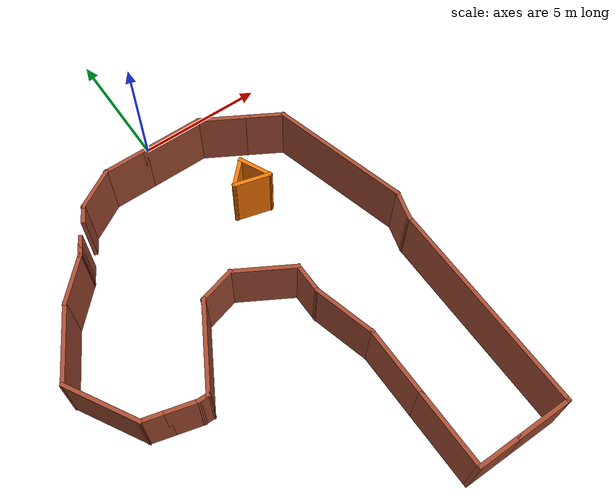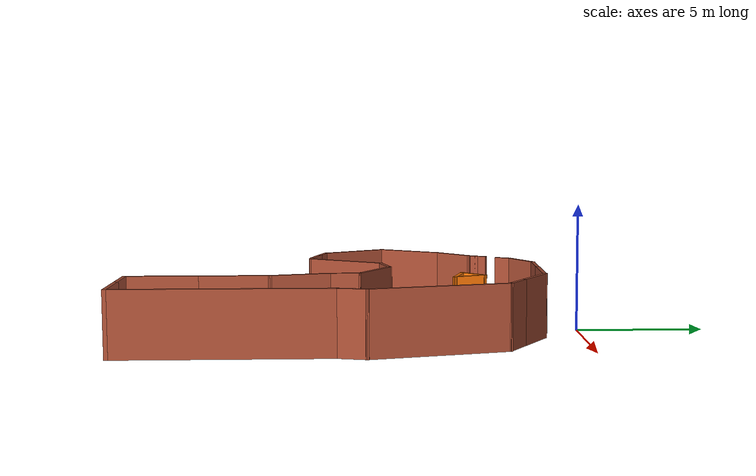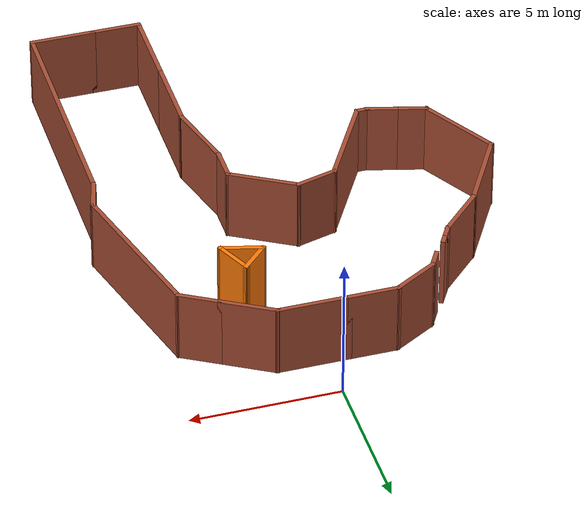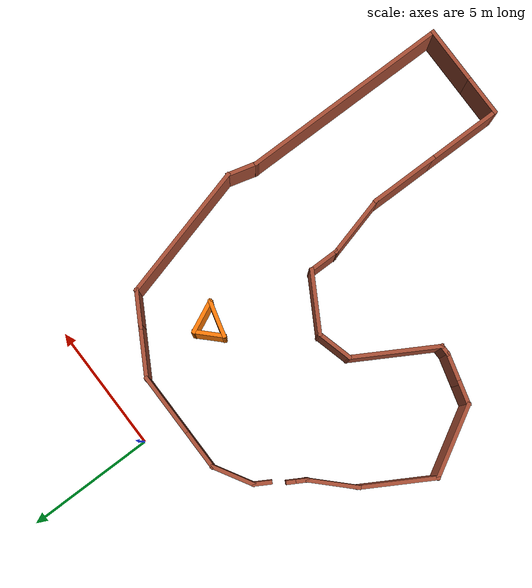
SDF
<?xml version='1.0'?>
<sdf version='1.7'>
  <model name='questionMark-shaped-room'>
    <pose>-0.796515 -8.7578 0 0 -0 0</pose>
    <link name='Wall_0'>
      <collision name='Wall_0_Collision'>
        <geometry>
          <box>
            <size>0.75 0.15 2.5</size>
          </box>
        </geometry>
        <pose>0 0 1.25 0 -0 0</pose>
      </collision>
      <visual name='Wall_0_Visual'>
        <pose>0 0 1.25 0 -0 0</pose>
        <geometry>
          <box>
            <size>0.75 0.15 2.5</size>
          </box>
        </geometry>
        <material>
          <script>
            <uri>file://media/materials/scripts/gazebo.material</uri>
            <name>Gazebo/Bricks</name>
          </script>
          <ambient>1 1 1 1</ambient>
        </material>
        <meta>
          <layer>0</layer>
        </meta>
      </visual>
      <pose>-3.00348 6.18761 0 0 -0 1.0472</pose>
    </link>
    <link name='Wall_1'>
      <collision name='Wall_1_Collision'>
        <geometry>
          <box>
            <size>1.75 0.15 2.5</size>
          </box>
        </geometry>
        <pose>0 0 1.25 0 -0 0</pose>
      </collision>
      <visual name='Wall_1_Visual'>
        <pose>0 0 1.25 0 -0 0</pose>
        <geometry>
          <box>
            <size>1.75 0.15 2.5</size>
          </box>
        </geometry>
        <material>
          <script>
            <uri>file://media/materials/scripts/gazebo.material</uri>
            <name>Gazebo/Bricks</name>
          </script>
          <ambient>1 1 1 1</ambient>
        </material>
        <meta>
          <layer>0</layer>
        </meta>
      </visual>
      <pose>-2.16066 6.84742 0 0 -0 0.523599</pose>
    </link>
    <link name='Wall_10'>
      <collision name='Wall_10_Collision'>
        <geometry>
          <box>
            <size>1.75 0.15 2.5</size>
          </box>
        </geometry>
        <pose>0 0 1.25 0 -0 0</pose>
      </collision>
      <visual name='Wall_10_Visual'>
        <pose>0 0 1.25 0 -0 0</pose>
        <geometry>
          <box>
            <size>1.75 0.15 2.5</size>
          </box>
        </geometry>
        <material>
          <script>
            <uri>file://media/materials/scripts/gazebo.material</uri>
            <name>Gazebo/Bricks</name>
          </script>
          <ambient>1 1 1 1</ambient>
        </material>
        <meta>
          <layer>0</layer>
        </meta>
      </visual>
      <pose>3.45342 -8.6828 0 0 -0 3.14159</pose>
    </link>
    <link name='Wall_11'>
      <collision name='Wall_11_Collision'>
        <geometry>
          <box>
            <size>3 0.15 2.5</size>
          </box>
        </geometry>
        <pose>0 0 1.25 0 -0 0</pose>
      </collision>
      <visual name='Wall_11_Visual'>
        <pose>0 0 1.25 0 -0 0</pose>
        <geometry>
          <box>
            <size>3 0.15 2.5</size>
          </box>
        </geometry>
        <material>
          <script>
            <uri>file://media/materials/scripts/gazebo.material</uri>
            <name>Gazebo/Bricks</name>
          </script>
          <ambient>1 1 1 1</ambient>
        </material>
        <meta>
          <layer>0</layer>
        </meta>
      </visual>
      <pose>2.65342 -7.2578 0 0 -0 1.5708</pose>
    </link>
    <link name='Wall_12'>
      <collision name='Wall_12_Collision'>
        <geometry>
          <box>
            <size>2.75 0.15 2.5</size>
          </box>
        </geometry>
        <pose>0 0 1.25 0 -0 0</pose>
      </collision>
      <visual name='Wall_12_Visual'>
        <pose>0 0 1.25 0 -0 0</pose>
        <geometry>
          <box>
            <size>2.75 0.15 2.5</size>
          </box>
        </geometry>
        <material>
          <script>
            <uri>file://media/materials/scripts/gazebo.material</uri>
            <name>Gazebo/Bricks</name>
          </script>
          <ambient>1 1 1 1</ambient>
        </material>
        <meta>
          <layer>0</layer>
        </meta>
      </visual>
      <pose>2.65342 -4.5328 0 0 -0 1.5708</pose>
    </link>
    <link name='Wall_13'>
      <collision name='Wall_13_Collision'>
        <geometry>
          <box>
            <size>2.5 0.15 2.5</size>
          </box>
        </geometry>
        <pose>0 0 1.25 0 -0 0</pose>
      </collision>
      <visual name='Wall_13_Visual'>
        <pose>0 0 1.25 0 -0 0</pose>
        <geometry>
          <box>
            <size>2.5 0.15 2.5</size>
          </box>
        </geometry>
        <material>
          <script>
            <uri>file://media/materials/scripts/gazebo.material</uri>
            <name>Gazebo/Bricks</name>
          </script>
          <ambient>1 1 1 1</ambient>
        </material>
        <meta>
          <layer>0</layer>
        </meta>
      </visual>
      <pose>2.34931 -2.09784 0 0 -0 1.8326</pose>
    </link>
    <link name='Wall_14'>
      <collision name='Wall_14_Collision'>
        <geometry>
          <box>
            <size>1.25 0.15 2.5</size>
          </box>
        </geometry>
        <pose>0 0 1.25 0 -0 0</pose>
      </collision>
      <visual name='Wall_14_Visual'>
        <pose>0 0 1.25 0 -0 0</pose>
        <geometry>
          <box>
            <size>1.25 0.15 2.5</size>
          </box>
        </geometry>
        <material>
          <script>
            <uri>file://media/materials/scripts/gazebo.material</uri>
            <name>Gazebo/Bricks</name>
          </script>
          <ambient>1 1 1 1</ambient>
        </material>
        <meta>
          <layer>0</layer>
        </meta>
      </visual>
      <pose>2.04519 -0.412877 0 0 -0 1.5708</pose>
    </link>
    <link name='Wall_15'>
      <collision name='Wall_15_Collision'>
        <geometry>
          <box>
            <size>2.5 0.15 2.5</size>
          </box>
        </geometry>
        <pose>0 0 1.25 0 -0 0</pose>
      </collision>
      <visual name='Wall_15_Visual'>
        <pose>0 0 1.25 0 -0 0</pose>
        <geometry>
          <box>
            <size>2.5 0.15 2.5</size>
          </box>
        </geometry>
        <material>
          <script>
            <uri>file://media/materials/scripts/gazebo.material</uri>
            <name>Gazebo/Bricks</name>
          </script>
          <ambient>1 1 1 1</ambient>
        </material>
        <meta>
          <layer>0</layer>
        </meta>
      </visual>
      <pose>1.02761 0.724624 0 0 -0 2.61799</pose>
    </link>
    <link name='Wall_16'>
      <collision name='Wall_16_Collision'>
        <geometry>
          <box>
            <size>1.5 0.15 2.5</size>
          </box>
        </geometry>
        <pose>0 0 1.25 0 -0 0</pose>
      </collision>
      <visual name='Wall_16_Visual'>
        <pose>0 0 1.25 0 -0 0</pose>
        <geometry>
          <box>
            <size>1.5 0.15 2.5</size>
          </box>
        </geometry>
        <material>
          <script>
            <uri>file://media/materials/scripts/gazebo.material</uri>
            <name>Gazebo/Bricks</name>
          </script>
          <ambient>1 1 1 1</ambient>
        </material>
        <meta>
          <layer>0</layer>
        </meta>
      </visual>
      <pose>-0.641967 1.13742 0 0 -0 -2.87979</pose>
    </link>
    <link name='Wall_17'>
      <collision name='Wall_17_Collision'>
        <geometry>
          <box>
            <size>3.5 0.15 2.5</size>
          </box>
        </geometry>
        <pose>0 0 1.25 0 -0 0</pose>
      </collision>
      <visual name='Wall_17_Visual'>
        <pose>0 0 1.25 0 -0 0</pose>
        <geometry>
          <box>
            <size>3.5 0.15 2.5</size>
          </box>
        </geometry>
        <material>
          <script>
            <uri>file://media/materials/scripts/gazebo.material</uri>
            <name>Gazebo/Bricks</name>
          </script>
          <ambient>1 1 1 1</ambient>
        </material>
        <meta>
          <layer>0</layer>
        </meta>
      </visual>
      <pose>-2.13147 -0.487875 0 0 -0 -2.0944</pose>
    </link>
    <link name='Wall_18'>
      <collision name='Wall_18_Collision'>
        <geometry>
          <box>
            <size>0.5 0.15 2.5</size>
          </box>
        </geometry>
        <pose>0 0 1.25 0 -0 0</pose>
      </collision>
      <visual name='Wall_18_Visual'>
        <pose>0 0 1.25 0 -0 0</pose>
        <geometry>
          <box>
            <size>0.5 0.15 2.5</size>
          </box>
        </geometry>
        <material>
          <script>
            <uri>file://media/materials/scripts/gazebo.material</uri>
            <name>Gazebo/Bricks</name>
          </script>
          <ambient>1 1 1 1</ambient>
        </material>
        <meta>
          <layer>0</layer>
        </meta>
      </visual>
      <pose>-3.14397 -1.93847 0 0 -0 3.14159</pose>
    </link>
    <link name='Wall_19'>
      <collision name='Wall_19_Collision'>
        <geometry>
          <box>
            <size>1.25 0.15 2.5</size>
          </box>
        </geometry>
        <pose>0 0 1.25 0 -0 0</pose>
      </collision>
      <visual name='Wall_19_Visual'>
        <pose>0 0 1.25 0 -0 0</pose>
        <geometry>
          <box>
            <size>1.25 0.15 2.5</size>
          </box>
        </geometry>
        <material>
          <script>
            <uri>file://media/materials/scripts/gazebo.material</uri>
            <name>Gazebo/Bricks</name>
          </script>
          <ambient>1 1 1 1</ambient>
        </material>
        <meta>
          <layer>0</layer>
        </meta>
      </visual>
      <pose>-3.85023 -1.79612 0 0 -0 2.87979</pose>
    </link>
    <link name='Wall_2'>
      <collision name='Wall_2_Collision'>
        <geometry>
          <box>
            <size>1.75 0.15 2.5</size>
          </box>
        </geometry>
        <pose>0 0 1.25 0 -0 0</pose>
      </collision>
      <visual name='Wall_2_Visual'>
        <pose>0 0 1.25 0 -0 0</pose>
        <geometry>
          <box>
            <size>1.75 0.15 2.5</size>
          </box>
        </geometry>
        <material>
          <script>
            <uri>file://media/materials/scripts/gazebo.material</uri>
            <name>Gazebo/Bricks</name>
          </script>
          <ambient>1 1 1 1</ambient>
        </material>
        <meta>
          <layer>0</layer>
        </meta>
      </visual>
      <pose>-0.667845 7.24742 0 0 -0 0</pose>
    </link>
    <link name='Wall_20'>
      <collision name='Wall_20_Collision'>
        <geometry>
          <box>
            <size>1 0.15 2.5</size>
          </box>
        </geometry>
        <pose>0 0 1.25 0 -0 0</pose>
      </collision>
      <visual name='Wall_20_Visual'>
        <pose>0 0 1.25 0 -0 0</pose>
        <geometry>
          <box>
            <size>1 0.15 2.5</size>
          </box>
        </geometry>
        <material>
          <script>
            <uri>file://media/materials/scripts/gazebo.material</uri>
            <name>Gazebo/Bricks</name>
          </script>
          <ambient>1 1 1 1</ambient>
        </material>
        <meta>
          <layer>0</layer>
        </meta>
      </visual>
      <pose>-4.792 -1.54377 0 0 -0 2.87979</pose>
    </link>
    <link name='Wall_21'>
      <collision name='Wall_21_Collision'>
        <geometry>
          <box>
            <size>3 0.15 2.5</size>
          </box>
        </geometry>
        <pose>0 0 1.25 0 -0 0</pose>
      </collision>
      <visual name='Wall_21_Visual'>
        <pose>0 0 1.25 0 -0 0</pose>
        <geometry>
          <box>
            <size>3 0.15 2.5</size>
          </box>
        </geometry>
        <material>
          <script>
            <uri>file://media/materials/scripts/gazebo.material</uri>
            <name>Gazebo/Bricks</name>
          </script>
          <ambient>1 1 1 1</ambient>
        </material>
        <meta>
          <layer>0</layer>
        </meta>
      </visual>
      <pose>-5.91502 -0.199684 0 0 -0 2.0944</pose>
    </link>
    <link name='Wall_22'>
      <collision name='Wall_22_Collision'>
        <geometry>
          <box>
            <size>3 0.15 2.5</size>
          </box>
        </geometry>
        <pose>0 0 1.25 0 -0 0</pose>
      </collision>
      <visual name='Wall_22_Visual'>
        <pose>0 0 1.25 0 -0 0</pose>
        <geometry>
          <box>
            <size>3 0.15 2.5</size>
          </box>
        </geometry>
        <material>
          <script>
            <uri>file://media/materials/scripts/gazebo.material</uri>
            <name>Gazebo/Bricks</name>
          </script>
          <ambient>1 1 1 1</ambient>
        </material>
        <meta>
          <layer>0</layer>
        </meta>
      </visual>
      <pose>-5.91502 2.26849 0 0 -0 1.0472</pose>
    </link>
    <link name='Wall_23'>
      <collision name='Wall_23_Collision'>
        <geometry>
          <box>
            <size>2 0.15 2.5</size>
          </box>
        </geometry>
        <pose>0 0 1.25 0 -0 0</pose>
      </collision>
      <visual name='Wall_23_Visual'>
        <pose>0 0 1.25 0 -0 0</pose>
        <geometry>
          <box>
            <size>2 0.15 2.5</size>
          </box>
        </geometry>
        <material>
          <script>
            <uri>file://media/materials/scripts/gazebo.material</uri>
            <name>Gazebo/Bricks</name>
          </script>
          <ambient>1 1 1 1</ambient>
        </material>
        <meta>
          <layer>0</layer>
        </meta>
      </visual>
      <pose>-4.54845 4.15665 0 0 -0 0.785398</pose>
    </link>
    <link name='Wall_24'>
      <collision name='Wall_24_Collision'>
        <geometry>
          <box>
            <size>0.5 0.15 2.5</size>
          </box>
        </geometry>
        <pose>0 0 1.25 0 -0 0</pose>
      </collision>
      <visual name='Wall_24_Visual'>
        <pose>0 0 1.25 0 -0 0</pose>
        <geometry>
          <box>
            <size>0.5 0.15 2.5</size>
          </box>
        </geometry>
        <material>
          <script>
            <uri>file://media/materials/scripts/gazebo.material</uri>
            <name>Gazebo/Bricks</name>
          </script>
          <ambient>1 1 1 1</ambient>
        </material>
        <meta>
          <layer>0</layer>
        </meta>
      </visual>
      <pose>-3.80687 4.96228 0 0 -0 1.0472</pose>
    </link>
    <link name='Wall_25'>
      <collision name='Wall_25_Collision'>
        <geometry>
          <box>
            <size>0.5 0.15 2.5</size>
          </box>
        </geometry>
        <pose>0 0 1.25 0 -0 0</pose>
      </collision>
      <visual name='Wall_25_Visual'>
        <pose>0 0 1.25 0 -0 0</pose>
        <geometry>
          <box>
            <size>0.5 0.15 2.5</size>
          </box>
        </geometry>
        <material>
          <script>
            <uri>file://media/materials/scripts/gazebo.material</uri>
            <name>Gazebo/Bricks</name>
          </script>
          <ambient>1 1 1 1</ambient>
        </material>
        <meta>
          <layer>0</layer>
        </meta>
      </visual>
      <pose>-3.63187 5.26539 0 0 -0 1.0472</pose>
    </link>
    <link name='Wall_27'>
      <collision name='Wall_27_Collision'>
        <geometry>
          <box>
            <size>1.25 0.15 2.5</size>
          </box>
        </geometry>
        <pose>0 0 1.25 0 -0 0</pose>
      </collision>
      <visual name='Wall_27_Visual'>
        <pose>0 0 1.25 0 -0 0</pose>
        <geometry>
          <box>
            <size>1.25 0.15 2.5</size>
          </box>
        </geometry>
        <material>
          <script>
            <uri>file://media/materials/scripts/gazebo.material</uri>
            <name>Gazebo/Grey</name>
          </script>
          <ambient>0.996078 0.47451 0.0196078 1</ambient>
        </material>
        <meta>
          <layer>0</layer>
        </meta>
      </visual>
      <pose>2.41986 4.49587 0 0 -0 -2.35619</pose>
    </link>
    <link name='Wall_28'>
      <collision name='Wall_28_Collision'>
        <geometry>
          <box>
            <size>1.5 0.15 2.5</size>
          </box>
        </geometry>
        <pose>0 0 1.25 0 -0 0</pose>
      </collision>
      <visual name='Wall_28_Visual'>
        <pose>0 0 1.25 0 -0 0</pose>
        <geometry>
          <box>
            <size>1.5 0.15 2.5</size>
          </box>
        </geometry>
        <material>
          <script>
            <uri>file://media/materials/scripts/gazebo.material</uri>
            <name>Gazebo/Grey</name>
          </script>
          <ambient>0.996078 0.47451 0.0196078 1</ambient>
        </material>
        <meta>
          <layer>0</layer>
        </meta>
      </visual>
      <pose>2.68295 3.93225 0 0 -0 -0.261799</pose>
    </link>
    <link name='Wall_29'>
      <collision name='Wall_29_Collision'>
        <geometry>
          <box>
            <size>1.39399 0.15 2.5</size>
          </box>
        </geometry>
        <pose>0 0 1.25 0 -0 0</pose>
      </collision>
      <visual name='Wall_29_Visual'>
        <pose>0 0 1.25 0 -0 0</pose>
        <geometry>
          <box>
            <size>1.39399 0.15 2.5</size>
          </box>
        </geometry>
        <material>
          <script>
            <uri>file://media/materials/scripts/gazebo.material</uri>
            <name>Gazebo/Grey</name>
          </script>
          <ambient>0.996078 0.47451 0.0196078 1</ambient>
        </material>
        <meta>
          <layer>0</layer>
        </meta>
      </visual>
      <pose>3.07186 4.32116 0 0 -0 2.00753</pose>
    </link>
    <link name='Wall_3'>
      <collision name='Wall_3_Collision'>
        <geometry>
          <box>
            <size>2.5 0.15 2.5</size>
          </box>
        </geometry>
        <pose>0 0 1.25 0 -0 0</pose>
      </collision>
      <visual name='Wall_3_Visual'>
        <pose>0 0 1.25 0 -0 0</pose>
        <geometry>
          <box>
            <size>2.5 0.15 2.5</size>
          </box>
        </geometry>
        <material>
          <script>
            <uri>file://media/materials/scripts/gazebo.material</uri>
            <name>Gazebo/Bricks</name>
          </script>
          <ambient>1 1 1 1</ambient>
        </material>
        <meta>
          <layer>0</layer>
        </meta>
      </visual>
      <pose>1.30716 7.24742 0 0 -0 0</pose>
    </link>
    <link name='Wall_4'>
      <collision name='Wall_4_Collision'>
        <geometry>
          <box>
            <size>2 0.15 2.5</size>
          </box>
        </geometry>
        <pose>0 0 1.25 0 -0 0</pose>
      </collision>
      <visual name='Wall_4_Visual'>
        <pose>0 0 1.25 0 -0 0</pose>
        <geometry>
          <box>
            <size>2 0.15 2.5</size>
          </box>
        </geometry>
        <material>
          <script>
            <uri>file://media/materials/scripts/gazebo.material</uri>
            <name>Gazebo/Bricks</name>
          </script>
          <ambient>1 1 1 1</ambient>
        </material>
        <meta>
          <layer>0</layer>
        </meta>
      </visual>
      <pose>3.28323 6.78492 0 0 -0 -0.523599</pose>
    </link>
    <link name='Wall_5'>
      <collision name='Wall_5_Collision'>
        <geometry>
          <box>
            <size>1.5 0.15 2.5</size>
          </box>
        </geometry>
        <pose>0 0 1.25 0 -0 0</pose>
      </collision>
      <visual name='Wall_5_Visual'>
        <pose>0 0 1.25 0 -0 0</pose>
        <geometry>
          <box>
            <size>1.5 0.15 2.5</size>
          </box>
        </geometry>
        <material>
          <script>
            <uri>file://media/materials/scripts/gazebo.material</uri>
            <name>Gazebo/Bricks</name>
          </script>
          <ambient>1 1 1 1</ambient>
        </material>
        <meta>
          <layer>0</layer>
        </meta>
      </visual>
      <pose>4.66887 5.98492 0 0 -0 -0.523599</pose>
    </link>
    <link name='Wall_6'>
      <collision name='Wall_6_Collision'>
        <geometry>
          <box>
            <size>5.5 0.15 2.5</size>
          </box>
        </geometry>
        <pose>0 0 1.25 0 -0 0</pose>
      </collision>
      <visual name='Wall_6_Visual'>
        <pose>0 0 1.25 0 -0 0</pose>
        <geometry>
          <box>
            <size>5.5 0.15 2.5</size>
          </box>
        </geometry>
        <material>
          <script>
            <uri>file://media/materials/scripts/gazebo.material</uri>
            <name>Gazebo/Bricks</name>
          </script>
          <ambient>1 1 1 1</ambient>
        </material>
        <meta>
          <layer>0</layer>
        </meta>
      </visual>
      <pose>5.94578 3.06357 0 0 -0 -1.309</pose>
    </link>
    <link name='Wall_7'>
      <collision name='Wall_7_Collision'>
        <geometry>
          <box>
            <size>1.25 0.15 2.5</size>
          </box>
        </geometry>
        <pose>0 0 1.25 0 -0 0</pose>
      </collision>
      <visual name='Wall_7_Visual'>
        <pose>0 0 1.25 0 -0 0</pose>
        <geometry>
          <box>
            <size>1.25 0.15 2.5</size>
          </box>
        </geometry>
        <material>
          <script>
            <uri>file://media/materials/scripts/gazebo.material</uri>
            <name>Gazebo/Bricks</name>
          </script>
          <ambient>1 1 1 1</ambient>
        </material>
        <meta>
          <layer>0</layer>
        </meta>
      </visual>
      <pose>6.49577 -0.051543 0 0 -0 -1.8326</pose>
    </link>
    <link name='Wall_8'>
      <collision name='Wall_8_Collision'>
        <geometry>
          <box>
            <size>8.25 0.15 2.5</size>
          </box>
        </geometry>
        <pose>0 0 1.25 0 -0 0</pose>
      </collision>
      <visual name='Wall_8_Visual'>
        <pose>0 0 1.25 0 -0 0</pose>
        <geometry>
          <box>
            <size>8.25 0.15 2.5</size>
          </box>
        </geometry>
        <material>
          <script>
            <uri>file://media/materials/scripts/gazebo.material</uri>
            <name>Gazebo/Bricks</name>
          </script>
          <ambient>1 1 1 1</ambient>
        </material>
        <meta>
          <layer>0</layer>
        </meta>
      </visual>
      <pose>6.35342 -4.6328 0 0 -0 -1.5708</pose>
    </link>
    <link name='Wall_9'>
      <collision name='Wall_9_Collision'>
        <geometry>
          <box>
            <size>2.25 0.15 2.5</size>
          </box>
        </geometry>
        <pose>0 0 1.25 0 -0 0</pose>
      </collision>
      <visual name='Wall_9_Visual'>
        <pose>0 0 1.25 0 -0 0</pose>
        <geometry>
          <box>
            <size>2.25 0.15 2.5</size>
          </box>
        </geometry>
        <material>
          <script>
            <uri>file://media/materials/scripts/gazebo.material</uri>
            <name>Gazebo/Bricks</name>
          </script>
          <ambient>1 1 1 1</ambient>
        </material>
        <meta>
          <layer>0</layer>
        </meta>
      </visual>
      <pose>5.30342 -8.6828 0 0 -0 3.14159</pose>
    </link>
    <static>1</static>
  </model>
</sdf>
